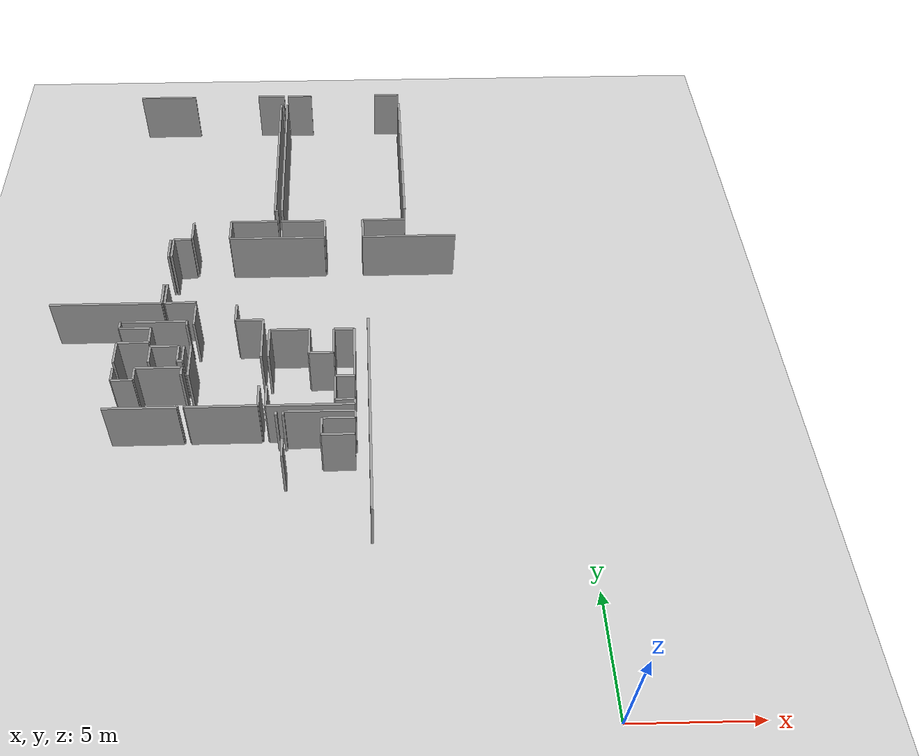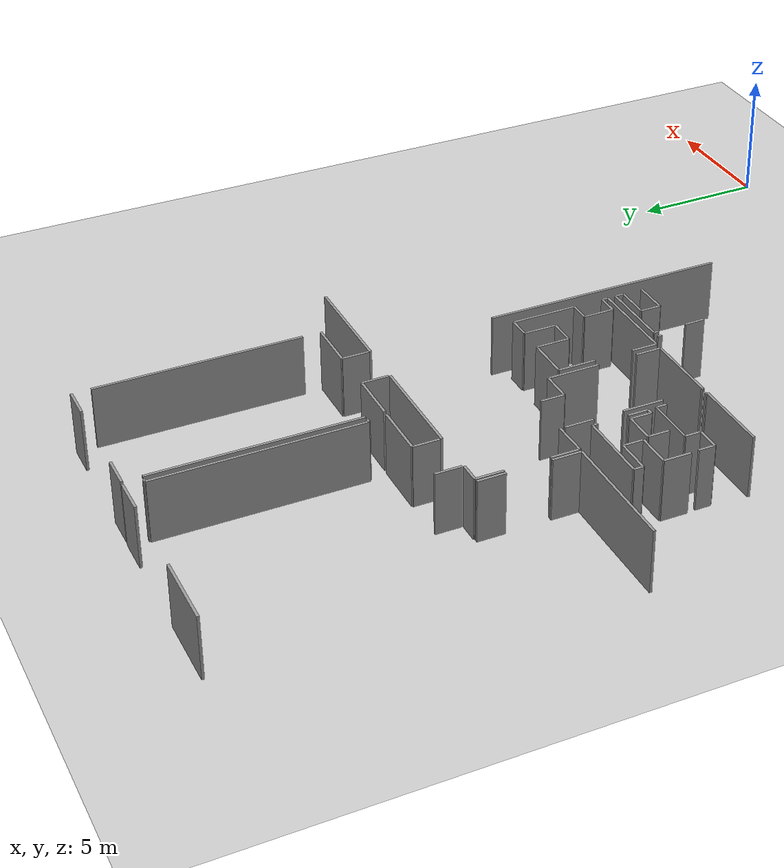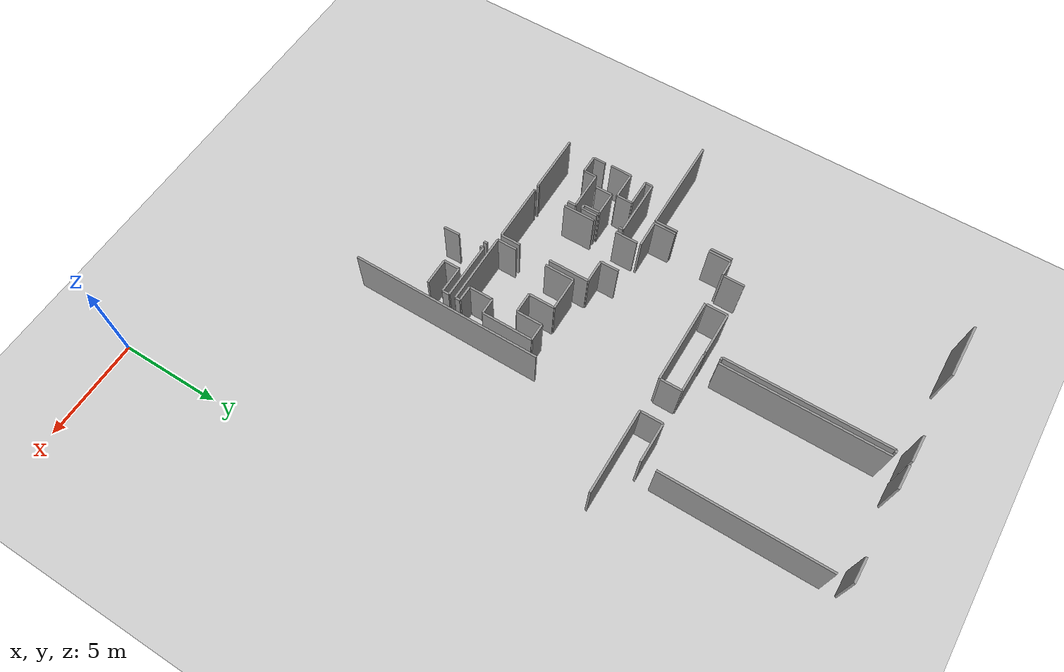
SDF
<sdf version="1.6">
 <world name="default">
  <model name="ground_plane">
   <static>1</static>
   <link name="link">
    <collision name="collision">
     <geometry><plane><normal>0 0 1</normal><size>100 100</size></plane></geometry>
     <surface><friction><ode><mu>100</mu><mu2>50</mu2></ode></friction></surface>
    </collision>
    <visual name="visual">
     <cast_shadows>0</cast_shadows>
     <geometry><plane><normal>0 0 1</normal><size>100 100</size></plane></geometry>
     <material>
      <script><uri>file://media/materials/scripts/gazebo.material</uri><name>Gazebo/Grey</name></script>
     </material>
    </visual>
   </link>
  </model>
  <model name="50052749">
   <static>1</static>
   <link name="Wall_51">
    <collision name="Wall_51_Collision">
     <geometry><box><size>1.0776397673 0.1 2.5</size></box></geometry>
     <pose>0.538819883652 0 1.25 0 0 0</pose>
    </collision>
    <visual name="Wall_51_Visual">
     <pose>0.538819883652 0 1.25 0 0 0</pose>
     <geometry><box><size>1.0776397673 0.1 2.5</size></box></geometry>
     <material>
      <script><uri>file://media/materials/scripts/gazebo.material</uri><name>Gazebo/Grey</name></script>
      <ambient>1 1 1 1</ambient>
     </material>
    </visual>
    <pose>25.0921807402 -10.5608443604 0 0 0 -1.57079632679</pose>
   </link>
   <link name="Wall_52">
    <collision name="Wall_52_Collision">
     <geometry><box><size>1.11720013998 0.1 2.5</size></box></geometry>
     <pose>0.558600069991 0 1.25 0 0 0</pose>
    </collision>
    <visual name="Wall_52_Visual">
     <pose>0.558600069991 0 1.25 0 0 0</pose>
     <geometry><box><size>1.11720013998 0.1 2.5</size></box></geometry>
     <material>
      <script><uri>file://media/materials/scripts/gazebo.material</uri><name>Gazebo/Grey</name></script>
      <ambient>1 1 1 1</ambient>
     </material>
    </visual>
    <pose>25.0921807402 -13.3620230566 0 0 0 -1.57079632679</pose>
   </link>
   <link name="Wall_53">
    <collision name="Wall_53_Collision">
     <geometry><box><size>4.80481013557 0.1 2.5</size></box></geometry>
     <pose>2.40240506779 0 1.25 0 0 0</pose>
    </collision>
    <visual name="Wall_53_Visual">
     <pose>2.40240506779 0 1.25 0 0 0</pose>
     <geometry><box><size>4.80481013557 0.1 2.5</size></box></geometry>
     <material>
      <script><uri>file://media/materials/scripts/gazebo.material</uri><name>Gazebo/Grey</name></script>
      <ambient>1 1 1 1</ambient>
     </material>
    </visual>
    <pose>25.0921807402 -14.4792231966 0 0 0 3.14159265359</pose>
   </link>
   <link name="Wall_67">
    <collision name="Wall_67_Collision">
     <geometry><box><size>1.01398814203 0.1 2.5</size></box></geometry>
     <pose>0.506994071016 0 1.25 0 0 0</pose>
    </collision>
    <visual name="Wall_67_Visual">
     <pose>0.506994071016 0 1.25 0 0 0</pose>
     <geometry><box><size>1.01398814203 0.1 2.5</size></box></geometry>
     <material>
      <script><uri>file://media/materials/scripts/gazebo.material</uri><name>Gazebo/Grey</name></script>
      <ambient>1 1 1 1</ambient>
     </material>
    </visual>
    <pose>26.0558308439 -9.47610401335 0 0 0 -1.57079632679</pose>
   </link>
   <link name="Wall_68">
    <collision name="Wall_68_Collision">
     <geometry><box><size>1.02933046605 0.1 2.5</size></box></geometry>
     <pose>0.514665233026 0 1.25 0 0 0</pose>
    </collision>
    <visual name="Wall_68_Visual">
     <pose>0.514665233026 0 1.25 0 0 0</pose>
     <geometry><box><size>1.02933046605 0.1 2.5</size></box></geometry>
     <material>
      <script><uri>file://media/materials/scripts/gazebo.material</uri><name>Gazebo/Grey</name></script>
      <ambient>1 1 1 1</ambient>
     </material>
    </visual>
    <pose>27.773917542 -10.4900921554 0 0 0 1.57079632679</pose>
   </link>
   <link name="Wall_69">
    <collision name="Wall_69_Collision">
     <geometry><box><size>2.12066420851 0.1 2.5</size></box></geometry>
     <pose>1.06033210426 0 1.25 0 0 0</pose>
    </collision>
    <visual name="Wall_69_Visual">
     <pose>1.06033210426 0 1.25 0 0 0</pose>
     <geometry><box><size>2.12066420851 0.1 2.5</size></box></geometry>
     <material>
      <script><uri>file://media/materials/scripts/gazebo.material</uri><name>Gazebo/Grey</name></script>
      <ambient>1 1 1 1</ambient>
     </material>
    </visual>
    <pose>27.773917542 -9.46076168933 0 0 0 0.0</pose>
   </link>
   <link name="Wall_70">
    <collision name="Wall_70_Collision">
     <geometry><box><size>0.14378673916 0.1 2.5</size></box></geometry>
     <pose>0.0718933695801 0 1.25 0 0 0</pose>
    </collision>
    <visual name="Wall_70_Visual">
     <pose>0.0718933695801 0 1.25 0 0 0</pose>
     <geometry><box><size>0.14378673916 0.1 2.5</size></box></geometry>
     <material>
      <script><uri>file://media/materials/scripts/gazebo.material</uri><name>Gazebo/Grey</name></script>
      <ambient>1 1 1 1</ambient>
     </material>
    </visual>
    <pose>29.8945817505 -8.7396724604 0 0 0 3.14159265359</pose>
   </link>
   <link name="Wall_71">
    <collision name="Wall_71_Collision">
     <geometry><box><size>7.99804226874 0.1 2.5</size></box></geometry>
     <pose>3.99902113437 0 1.25 0 0 0</pose>
    </collision>
    <visual name="Wall_71_Visual">
     <pose>3.99902113437 0 1.25 0 0 0</pose>
     <geometry><box><size>7.99804226874 0.1 2.5</size></box></geometry>
     <material>
      <script><uri>file://media/materials/scripts/gazebo.material</uri><name>Gazebo/Grey</name></script>
      <ambient>1 1 1 1</ambient>
     </material>
    </visual>
    <pose>29.7507950113 -8.7396724604 0 0 0 1.57079632679</pose>
   </link>
   <link name="Wall_72">
    <collision name="Wall_72_Collision">
     <geometry><box><size>0.138714896509 0.1 2.5</size></box></geometry>
     <pose>0.0693574482545 0 1.25 0 0 0</pose>
    </collision>
    <visual name="Wall_72_Visual">
     <pose>0.0693574482545 0 1.25 0 0 0</pose>
     <geometry><box><size>0.138714896509 0.1 2.5</size></box></geometry>
     <material>
      <script><uri>file://media/materials/scripts/gazebo.material</uri><name>Gazebo/Grey</name></script>
      <ambient>1 1 1 1</ambient>
     </material>
    </visual>
    <pose>29.7507950113 -0.741630191665 0 0 0 0.0</pose>
   </link>
   <link name="Wall_73">
    <collision name="Wall_73_Collision">
     <geometry><box><size>1.34277034189 0.1 2.5</size></box></geometry>
     <pose>0.671385170946 0 1.25 0 0 0</pose>
    </collision>
    <visual name="Wall_73_Visual">
     <pose>0.671385170946 0 1.25 0 0 0</pose>
     <geometry><box><size>1.34277034189 0.1 2.5</size></box></geometry>
     <material>
      <script><uri>file://media/materials/scripts/gazebo.material</uri><name>Gazebo/Grey</name></script>
      <ambient>1 1 1 1</ambient>
     </material>
    </visual>
    <pose>29.8895099078 -0.0167370807488 0 0 0 3.14159265359</pose>
   </link>
   <link name="Wall_74">
    <collision name="Wall_74_Collision">
     <geometry><box><size>2.76466142914 0.1 2.5</size></box></geometry>
     <pose>1.38233071457 0 1.25 0 0 0</pose>
    </collision>
    <visual name="Wall_74_Visual">
     <pose>1.38233071457 0 1.25 0 0 0</pose>
     <geometry><box><size>2.76466142914 0.1 2.5</size></box></geometry>
     <material>
      <script><uri>file://media/materials/scripts/gazebo.material</uri><name>Gazebo/Grey</name></script>
      <ambient>1 1 1 1</ambient>
     </material>
    </visual>
    <pose>25.3121719152 -0.0167370807488 0 0 0 3.14159265359</pose>
   </link>
   <link name="Wall_78">
    <collision name="Wall_78_Collision">
     <geometry><box><size>7.99132207722 0.1 2.5</size></box></geometry>
     <pose>3.99566103861 0 1.25 0 0 0</pose>
    </collision>
    <visual name="Wall_78_Visual">
     <pose>3.99566103861 0 1.25 0 0 0</pose>
     <geometry><box><size>7.99132207722 0.1 2.5</size></box></geometry>
     <material>
      <script><uri>file://media/materials/scripts/gazebo.material</uri><name>Gazebo/Grey</name></script>
      <ambient>1 1 1 1</ambient>
     </material>
    </visual>
    <pose>30.0660100321 -8.74778740864 0 0 0 1.57079632679</pose>
   </link>
   <link name="Wall_79">
    <collision name="Wall_79_Collision">
     <geometry><box><size>1.21128282116 0.1 2.5</size></box></geometry>
     <pose>0.605641410581 0 1.25 0 0 0</pose>
    </collision>
    <visual name="Wall_79_Visual">
     <pose>0.605641410581 0 1.25 0 0 0</pose>
     <geometry><box><size>1.21128282116 0.1 2.5</size></box></geometry>
     <material>
      <script><uri>file://media/materials/scripts/gazebo.material</uri><name>Gazebo/Grey</name></script>
      <ambient>1 1 1 1</ambient>
     </material>
    </visual>
    <pose>30.0660100321 -0.0394335766127 0 0 0 0.0</pose>
   </link>
   <link name="Wall_80">
    <collision name="Wall_80_Collision">
     <geometry><box><size>1.22548398058 0.1 2.5</size></box></geometry>
     <pose>0.612741990292 0 1.25 0 0 0</pose>
    </collision>
    <visual name="Wall_80_Visual">
     <pose>0.612741990292 0 1.25 0 0 0</pose>
     <geometry><box><size>1.22548398058 0.1 2.5</size></box></geometry>
     <material>
      <script><uri>file://media/materials/scripts/gazebo.material</uri><name>Gazebo/Grey</name></script>
      <ambient>1 1 1 1</ambient>
     </material>
    </visual>
    <pose>34.5454614616 -0.0394335766127 0 0 0 0.0</pose>
   </link>
   <link name="Wall_81">
    <collision name="Wall_81_Collision">
     <geometry><box><size>7.98143198405 0.1 2.5</size></box></geometry>
     <pose>3.99071599203 0 1.25 0 0 0</pose>
    </collision>
    <visual name="Wall_81_Visual">
     <pose>3.99071599203 0 1.25 0 0 0</pose>
     <geometry><box><size>7.98143198405 0.1 2.5</size></box></geometry>
     <material>
      <script><uri>file://media/materials/scripts/gazebo.material</uri><name>Gazebo/Grey</name></script>
      <ambient>1 1 1 1</ambient>
     </material>
    </visual>
    <pose>35.7709454422 -0.754309798293 0 0 0 -1.57079632679</pose>
   </link>
   <link name="Wall_82">
    <collision name="Wall_82_Collision">
     <geometry><box><size>1.962803106 0.1 2.5</size></box></geometry>
     <pose>0.981401552998 0 1.25 0 0 0</pose>
    </collision>
    <visual name="Wall_82_Visual">
     <pose>0.981401552998 0 1.25 0 0 0</pose>
     <geometry><box><size>1.962803106 0.1 2.5</size></box></geometry>
     <material>
      <script><uri>file://media/materials/scripts/gazebo.material</uri><name>Gazebo/Grey</name></script>
      <ambient>1 1 1 1</ambient>
     </material>
    </visual>
    <pose>35.7709454422 -9.45683101127 0 0 0 3.14159265359</pose>
   </link>
   <link name="Wall_83">
    <collision name="Wall_83_Collision">
     <geometry><box><size>1.04974463272 0.1 2.5</size></box></geometry>
     <pose>0.524872316361 0 1.25 0 0 0</pose>
    </collision>
    <visual name="Wall_83_Visual">
     <pose>0.524872316361 0 1.25 0 0 0</pose>
     <geometry><box><size>1.04974463272 0.1 2.5</size></box></geometry>
     <material>
      <script><uri>file://media/materials/scripts/gazebo.material</uri><name>Gazebo/Grey</name></script>
      <ambient>1 1 1 1</ambient>
     </material>
    </visual>
    <pose>33.8081423362 -9.45683101127 0 0 0 -1.57079632679</pose>
   </link>
   <link name="Wall_84">
    <collision name="Wall_84_Collision">
     <geometry><box><size>1.03135920311 0.1 2.5</size></box></geometry>
     <pose>0.515679601556 0 1.25 0 0 0</pose>
    </collision>
    <visual name="Wall_84_Visual">
     <pose>0.515679601556 0 1.25 0 0 0</pose>
     <geometry><box><size>1.03135920311 0.1 2.5</size></box></geometry>
     <material>
      <script><uri>file://media/materials/scripts/gazebo.material</uri><name>Gazebo/Grey</name></script>
      <ambient>1 1 1 1</ambient>
     </material>
    </visual>
    <pose>32.0584834176 -10.506575644 0 0 0 1.57079632679</pose>
   </link>
   <link name="Wall_85">
    <collision name="Wall_85_Collision">
     <geometry><box><size>1.9924749993 0.1 2.5</size></box></geometry>
     <pose>0.996237499651 0 1.25 0 0 0</pose>
    </collision>
    <visual name="Wall_85_Visual">
     <pose>0.996237499651 0 1.25 0 0 0</pose>
     <geometry><box><size>1.9924749993 0.1 2.5</size></box></geometry>
     <material>
      <script><uri>file://media/materials/scripts/gazebo.material</uri><name>Gazebo/Grey</name></script>
      <ambient>1 1 1 1</ambient>
     </material>
    </visual>
    <pose>32.0584834176 -9.47521644089 0 0 0 3.14031990386</pose>
   </link>
   <link name="Wall_120">
    <collision name="Wall_120_Collision">
     <geometry><box><size>1.10439373729 0.1 2.5</size></box></geometry>
     <pose>0.552196868644 0 1.25 0 0 0</pose>
    </collision>
    <visual name="Wall_120_Visual">
     <pose>0.552196868644 0 1.25 0 0 0</pose>
     <geometry><box><size>1.10439373729 0.1 2.5</size></box></geometry>
     <material>
      <script><uri>file://media/materials/scripts/gazebo.material</uri><name>Gazebo/Grey</name></script>
      <ambient>1 1 1 1</ambient>
     </material>
    </visual>
    <pose>25.2329243738 -14.4792231966 0 0 0 1.57079632679</pose>
   </link>
   <link name="Wall_121">
    <collision name="Wall_121_Collision">
     <geometry><box><size>1.0896853936 0.1 2.5</size></box></geometry>
     <pose>0.5448426968 0 1.25 0 0 0</pose>
    </collision>
    <visual name="Wall_121_Visual">
     <pose>0.5448426968 0 1.25 0 0 0</pose>
     <geometry><box><size>1.0896853936 0.1 2.5</size></box></geometry>
     <material>
      <script><uri>file://media/materials/scripts/gazebo.material</uri><name>Gazebo/Grey</name></script>
      <ambient>1 1 1 1</ambient>
     </material>
    </visual>
    <pose>25.2329243738 -11.6529388792 0 0 0 1.57079632679</pose>
   </link>
   <link name="Wall_122">
    <collision name="Wall_122_Collision">
     <geometry><box><size>0.79222182211 0.1 2.5</size></box></geometry>
     <pose>0.396110911055 0 1.25 0 0 0</pose>
    </collision>
    <visual name="Wall_122_Visual">
     <pose>0.396110911055 0 1.25 0 0 0</pose>
     <geometry><box><size>0.79222182211 0.1 2.5</size></box></geometry>
     <material>
      <script><uri>file://media/materials/scripts/gazebo.material</uri><name>Gazebo/Grey</name></script>
      <ambient>1 1 1 1</ambient>
     </material>
    </visual>
    <pose>25.2329243738 -10.5632534856 0 0 0 0.0</pose>
   </link>
   <link name="Wall_123">
    <collision name="Wall_123_Collision">
     <geometry><box><size>4.28139597397 0.1 2.5</size></box></geometry>
     <pose>2.14069798699 0 1.25 0 0 0</pose>
    </collision>
    <visual name="Wall_123_Visual">
     <pose>2.14069798699 0 1.25 0 0 0</pose>
     <geometry><box><size>4.28139597397 0.1 2.5</size></box></geometry>
     <material>
      <script><uri>file://media/materials/scripts/gazebo.material</uri><name>Gazebo/Grey</name></script>
      <ambient>1 1 1 1</ambient>
     </material>
    </visual>
    <pose>27.7661829819 -10.5632534856 0 0 0 0.0</pose>
   </link>
   <link name="Wall_124">
    <collision name="Wall_124_Collision">
     <geometry><box><size>4.22649327727 0.1 2.5</size></box></geometry>
     <pose>2.11324663864 0 1.25 0 0 0</pose>
    </collision>
    <visual name="Wall_124_Visual">
     <pose>2.11324663864 0 1.25 0 0 0</pose>
     <geometry><box><size>4.22649327727 0.1 2.5</size></box></geometry>
     <material>
      <script><uri>file://media/materials/scripts/gazebo.material</uri><name>Gazebo/Grey</name></script>
      <ambient>1 1 1 1</ambient>
     </material>
    </visual>
    <pose>33.7911516633 -10.5632534856 0 0 0 0.0</pose>
   </link>
   <link name="Wall_138">
    <collision name="Wall_138_Collision">
     <geometry><box><size>1.35602671233 0.1 2.5</size></box></geometry>
     <pose>0.678013356164 0 1.25 0 0 0</pose>
    </collision>
    <visual name="Wall_138_Visual">
     <pose>0.678013356164 0 1.25 0 0 0</pose>
     <geometry><box><size>1.35602671233 0.1 2.5</size></box></geometry>
     <material>
      <script><uri>file://media/materials/scripts/gazebo.material</uri><name>Gazebo/Grey</name></script>
      <ambient>1 1 1 1</ambient>
     </material>
    </visual>
    <pose>26.5887547105 -14.4561463125 0 0 0 -3.12457381621</pose>
   </link>
   <link name="Wall_192">
    <collision name="Wall_192_Collision">
     <geometry><box><size>9.47877100584 0.1 2.5</size></box></geometry>
     <pose>4.73938550292 0 1.25 0 0 0</pose>
    </collision>
    <visual name="Wall_192_Visual">
     <pose>4.73938550292 0 1.25 0 0 0</pose>
     <geometry><box><size>9.47877100584 0.1 2.5</size></box></geometry>
     <material>
      <script><uri>file://media/materials/scripts/gazebo.material</uri><name>Gazebo/Grey</name></script>
      <ambient>1 1 1 1</ambient>
     </material>
    </visual>
    <pose>33.9682857679 -15.5430421927 0 0 0 -1.57174608305</pose>
   </link>
   <link name="Wall_193">
    <collision name="Wall_193_Collision">
     <geometry><box><size>0.0666947308627 0.1 2.5</size></box></geometry>
     <pose>0.0333473654313 0 1.25 0 0 0</pose>
    </collision>
    <visual name="Wall_193_Visual">
     <pose>0.0333473654313 0 1.25 0 0 0</pose>
     <geometry><box><size>0.0666947308627 0.1 2.5</size></box></geometry>
     <material>
      <script><uri>file://media/materials/scripts/gazebo.material</uri><name>Gazebo/Grey</name></script>
      <ambient>1 1 1 1</ambient>
     </material>
    </visual>
    <pose>26.5835560718 -20.1234232909 0 0 0 1.57079632679</pose>
   </link>
   <link name="Wall_194">
    <collision name="Wall_194_Collision">
     <geometry><box><size>1.56973530053 0.1 2.5</size></box></geometry>
     <pose>0.784867650266 0 1.25 0 0 0</pose>
    </collision>
    <visual name="Wall_194_Visual">
     <pose>0.784867650266 0 1.25 0 0 0</pose>
     <geometry><box><size>1.56973530053 0.1 2.5</size></box></geometry>
     <material>
      <script><uri>file://media/materials/scripts/gazebo.material</uri><name>Gazebo/Grey</name></script>
      <ambient>1 1 1 1</ambient>
     </material>
    </visual>
    <pose>26.5835560718 -18.4811606405 0 0 0 1.57079632679</pose>
   </link>
   <link name="Wall_195">
    <collision name="Wall_195_Collision">
     <geometry><box><size>1.10883159961 0.1 2.5</size></box></geometry>
     <pose>0.554415799804 0 1.25 0 0 0</pose>
    </collision>
    <visual name="Wall_195_Visual">
     <pose>0.554415799804 0 1.25 0 0 0</pose>
     <geometry><box><size>1.10883159961 0.1 2.5</size></box></geometry>
     <material>
      <script><uri>file://media/materials/scripts/gazebo.material</uri><name>Gazebo/Grey</name></script>
      <ambient>1 1 1 1</ambient>
     </material>
    </visual>
    <pose>26.5835560718 -15.744521142 0 0 0 1.57079632679</pose>
   </link>
   <link name="Wall_196">
    <collision name="Wall_196_Collision">
     <geometry><box><size>0.909888571617 0.1 2.5</size></box></geometry>
     <pose>0.454944285808 0 1.25 0 0 0</pose>
    </collision>
    <visual name="Wall_196_Visual">
     <pose>0.454944285808 0 1.25 0 0 0</pose>
     <geometry><box><size>0.909888571617 0.1 2.5</size></box></geometry>
     <material>
      <script><uri>file://media/materials/scripts/gazebo.material</uri><name>Gazebo/Grey</name></script>
      <ambient>1 1 1 1</ambient>
     </material>
    </visual>
    <pose>28.3387940173 -14.6356895424 0 0 0 -1.57079632679</pose>
   </link>
   <link name="Wall_197">
    <collision name="Wall_197_Collision">
     <geometry><box><size>1.16994730355 0.1 2.5</size></box></geometry>
     <pose>0.584973651777 0 1.25 0 0 0</pose>
    </collision>
    <visual name="Wall_197_Visual">
     <pose>0.584973651777 0 1.25 0 0 0</pose>
     <geometry><box><size>1.16994730355 0.1 2.5</size></box></geometry>
     <material>
      <script><uri>file://media/materials/scripts/gazebo.material</uri><name>Gazebo/Grey</name></script>
      <ambient>1 1 1 1</ambient>
     </material>
    </visual>
    <pose>28.3387940173 -15.545578114 0 0 0 0.0</pose>
   </link>
   <link name="Wall_198">
    <collision name="Wall_198_Collision">
     <geometry><box><size>2.01326794038 0.1 2.5</size></box></geometry>
     <pose>1.00663397019 0 1.25 0 0 0</pose>
    </collision>
    <visual name="Wall_198_Visual">
     <pose>1.00663397019 0 1.25 0 0 0</pose>
     <geometry><box><size>2.01326794038 0.1 2.5</size></box></geometry>
     <material>
      <script><uri>file://media/materials/scripts/gazebo.material</uri><name>Gazebo/Grey</name></script>
      <ambient>1 1 1 1</ambient>
     </material>
    </visual>
    <pose>29.5087413208 -15.545578114 0 0 0 -1.57079632679</pose>
   </link>
   <link name="Wall_199">
    <collision name="Wall_199_Collision">
     <geometry><box><size>0.996236692753 0.1 2.5</size></box></geometry>
     <pose>0.498118346376 0 1.25 0 0 0</pose>
    </collision>
    <visual name="Wall_199_Visual">
     <pose>0.498118346376 0 1.25 0 0 0</pose>
     <geometry><box><size>0.996236692753 0.1 2.5</size></box></geometry>
     <material>
      <script><uri>file://media/materials/scripts/gazebo.material</uri><name>Gazebo/Grey</name></script>
      <ambient>1 1 1 1</ambient>
     </material>
    </visual>
    <pose>29.5087413208 -19.119198446 0 0 0 -1.57079632679</pose>
   </link>
   <link name="Wall_200">
    <collision name="Wall_200_Collision">
     <geometry><box><size>2.92519615613 0.1 2.5</size></box></geometry>
     <pose>1.46259807807 0 1.25 0 0 0</pose>
    </collision>
    <visual name="Wall_200_Visual">
     <pose>1.46259807807 0 1.25 0 0 0</pose>
     <geometry><box><size>2.92519615613 0.1 2.5</size></box></geometry>
     <material>
      <script><uri>file://media/materials/scripts/gazebo.material</uri><name>Gazebo/Grey</name></script>
      <ambient>1 1 1 1</ambient>
     </material>
    </visual>
    <pose>29.5087413208 -20.1154351387 0 0 0 -3.13886184113</pose>
   </link>
   <link name="Wall_201">
    <collision name="Wall_201_Collision">
     <geometry><box><size>0.992052422566 0.1 2.5</size></box></geometry>
     <pose>0.496026211283 0 1.25 0 0 0</pose>
    </collision>
    <visual name="Wall_201_Visual">
     <pose>0.496026211283 0 1.25 0 0 0</pose>
     <geometry><box><size>0.992052422566 0.1 2.5</size></box></geometry>
     <material>
      <script><uri>file://media/materials/scripts/gazebo.material</uri><name>Gazebo/Grey</name></script>
      <ambient>1 1 1 1</ambient>
     </material>
    </visual>
    <pose>29.8100087743 -20.1234232909 0 0 0 1.57079632679</pose>
   </link>
   <link name="Wall_202">
    <collision name="Wall_202_Collision">
     <geometry><box><size>1.45625282121 0.1 2.5</size></box></geometry>
     <pose>0.728126410606 0 1.25 0 0 0</pose>
    </collision>
    <visual name="Wall_202_Visual">
     <pose>0.728126410606 0 1.25 0 0 0</pose>
     <geometry><box><size>1.45625282121 0.1 2.5</size></box></geometry>
     <material>
      <script><uri>file://media/materials/scripts/gazebo.material</uri><name>Gazebo/Grey</name></script>
      <ambient>1 1 1 1</ambient>
     </material>
    </visual>
    <pose>29.8100087743 -17.5796406092 0 0 0 1.57079632679</pose>
   </link>
   <link name="Wall_203">
    <collision name="Wall_203_Collision">
     <geometry><box><size>1.68080865459 0.1 2.5</size></box></geometry>
     <pose>0.840404327296 0 1.25 0 0 0</pose>
    </collision>
    <visual name="Wall_203_Visual">
     <pose>0.840404327296 0 1.25 0 0 0</pose>
     <geometry><box><size>1.68080865459 0.1 2.5</size></box></geometry>
     <material>
      <script><uri>file://media/materials/scripts/gazebo.material</uri><name>Gazebo/Grey</name></script>
      <ambient>1 1 1 1</ambient>
     </material>
    </visual>
    <pose>29.8100087743 -16.123387788 0 0 0 0.0</pose>
   </link>
   <link name="Wall_204">
    <collision name="Wall_204_Collision">
     <geometry><box><size>1.29864531083 0.1 2.5</size></box></geometry>
     <pose>0.649322655414 0 1.25 0 0 0</pose>
    </collision>
    <visual name="Wall_204_Visual">
     <pose>0.649322655414 0 1.25 0 0 0</pose>
     <geometry><box><size>1.29864531083 0.1 2.5</size></box></geometry>
     <material>
      <script><uri>file://media/materials/scripts/gazebo.material</uri><name>Gazebo/Grey</name></script>
      <ambient>1 1 1 1</ambient>
     </material>
    </visual>
    <pose>31.4908174289 -16.123387788 0 0 0 -1.57079632679</pose>
   </link>
   <link name="Wall_205">
    <collision name="Wall_205_Collision">
     <geometry><box><size>1.02121551781 0.1 2.5</size></box></geometry>
     <pose>0.510607758905 0 1.25 0 0 0</pose>
    </collision>
    <visual name="Wall_205_Visual">
     <pose>0.510607758905 0 1.25 0 0 0</pose>
     <geometry><box><size>1.02121551781 0.1 2.5</size></box></geometry>
     <material>
      <script><uri>file://media/materials/scripts/gazebo.material</uri><name>Gazebo/Grey</name></script>
      <ambient>1 1 1 1</ambient>
     </material>
    </visual>
    <pose>31.4908174289 -17.4220330988 0 0 0 0.0</pose>
   </link>
   <link name="Wall_206">
    <collision name="Wall_206_Collision">
     <geometry><box><size>1.27975269695 0.1 2.5</size></box></geometry>
     <pose>0.639876348476 0 1.25 0 0 0</pose>
    </collision>
    <visual name="Wall_206_Visual">
     <pose>0.639876348476 0 1.25 0 0 0</pose>
     <geometry><box><size>1.27975269695 0.1 2.5</size></box></geometry>
     <material>
      <script><uri>file://media/materials/scripts/gazebo.material</uri><name>Gazebo/Grey</name></script>
      <ambient>1 1 1 1</ambient>
     </material>
    </visual>
    <pose>32.5120329467 -17.4220330988 0 0 0 1.57079632679</pose>
   </link>
   <link name="Wall_207">
    <collision name="Wall_207_Collision">
     <geometry><box><size>0.857268204111 0.1 2.5</size></box></geometry>
     <pose>0.428634102056 0 1.25 0 0 0</pose>
    </collision>
    <visual name="Wall_207_Visual">
     <pose>0.428634102056 0 1.25 0 0 0</pose>
     <geometry><box><size>0.857268204111 0.1 2.5</size></box></geometry>
     <material>
      <script><uri>file://media/materials/scripts/gazebo.material</uri><name>Gazebo/Grey</name></script>
      <ambient>1 1 1 1</ambient>
     </material>
    </visual>
    <pose>32.5120329467 -16.1422804019 0 0 0 0.0</pose>
   </link>
   <link name="Wall_208">
    <collision name="Wall_208_Collision">
     <geometry><box><size>2.52882074587 0.1 2.5</size></box></geometry>
     <pose>1.26441037293 0 1.25 0 0 0</pose>
    </collision>
    <visual name="Wall_208_Visual">
     <pose>1.26441037293 0 1.25 0 0 0</pose>
     <geometry><box><size>2.52882074587 0.1 2.5</size></box></geometry>
     <material>
      <script><uri>file://media/materials/scripts/gazebo.material</uri><name>Gazebo/Grey</name></script>
      <ambient>1 1 1 1</ambient>
     </material>
    </visual>
    <pose>33.3693011508 -16.1422804019 0 0 0 -1.57079632679</pose>
   </link>
   <link name="Wall_209">
    <collision name="Wall_209_Collision">
     <geometry><box><size>0.78778395979 0.1 2.5</size></box></geometry>
     <pose>0.393891979895 0 1.25 0 0 0</pose>
    </collision>
    <visual name="Wall_209_Visual">
     <pose>0.393891979895 0 1.25 0 0 0</pose>
     <geometry><box><size>0.78778395979 0.1 2.5</size></box></geometry>
     <material>
      <script><uri>file://media/materials/scripts/gazebo.material</uri><name>Gazebo/Grey</name></script>
      <ambient>1 1 1 1</ambient>
     </material>
    </visual>
    <pose>33.3693011508 -18.6711011478 0 0 0 3.14159265359</pose>
   </link>
   <link name="Wall_210">
    <collision name="Wall_210_Collision">
     <geometry><box><size>1.19644768141 0.1 2.5</size></box></geometry>
     <pose>0.598223840704 0 1.25 0 0 0</pose>
    </collision>
    <visual name="Wall_210_Visual">
     <pose>0.598223840704 0 1.25 0 0 0</pose>
     <geometry><box><size>1.19644768141 0.1 2.5</size></box></geometry>
     <material>
      <script><uri>file://media/materials/scripts/gazebo.material</uri><name>Gazebo/Grey</name></script>
      <ambient>1 1 1 1</ambient>
     </material>
    </visual>
    <pose>32.581517191 -18.6711011478 0 0 0 -1.57079632679</pose>
   </link>
   <link name="Wall_211">
    <collision name="Wall_211_Collision">
     <geometry><box><size>0.786515999128 0.1 2.5</size></box></geometry>
     <pose>0.393257999564 0 1.25 0 0 0</pose>
    </collision>
    <visual name="Wall_211_Visual">
     <pose>0.393257999564 0 1.25 0 0 0</pose>
     <geometry><box><size>0.786515999128 0.1 2.5</size></box></geometry>
     <material>
      <script><uri>file://media/materials/scripts/gazebo.material</uri><name>Gazebo/Grey</name></script>
      <ambient>1 1 1 1</ambient>
     </material>
    </visual>
    <pose>32.581517191 -19.8675488292 0 0 0 0.0</pose>
   </link>
   <link name="Wall_212">
    <collision name="Wall_212_Collision">
     <geometry><box><size>0.243068059057 0.1 2.5</size></box></geometry>
     <pose>0.121534029528 0 1.25 0 0 0</pose>
    </collision>
    <visual name="Wall_212_Visual">
     <pose>0.121534029528 0 1.25 0 0 0</pose>
     <geometry><box><size>0.243068059057 0.1 2.5</size></box></geometry>
     <material>
      <script><uri>file://media/materials/scripts/gazebo.material</uri><name>Gazebo/Grey</name></script>
      <ambient>1 1 1 1</ambient>
     </material>
    </visual>
    <pose>33.3680331901 -19.8675488292 0 0 0 -1.57079632679</pose>
   </link>
   <link name="Wall_213">
    <collision name="Wall_213_Collision">
     <geometry><box><size>3.55804746283 0.1 2.5</size></box></geometry>
     <pose>1.77902373141 0 1.25 0 0 0</pose>
    </collision>
    <visual name="Wall_213_Visual">
     <pose>1.77902373141 0 1.25 0 0 0</pose>
     <geometry><box><size>3.55804746283 0.1 2.5</size></box></geometry>
     <material>
      <script><uri>file://media/materials/scripts/gazebo.material</uri><name>Gazebo/Grey</name></script>
      <ambient>1 1 1 1</ambient>
     </material>
    </visual>
    <pose>33.3680331901 -20.1106168882 0 0 0 -3.13799336761</pose>
   </link>
   <link name="Wall_216">
    <collision name="Wall_216_Collision">
     <geometry><box><size>0.634360719593 0.1 2.5</size></box></geometry>
     <pose>0.317180359797 0 1.25 0 0 0</pose>
    </collision>
    <visual name="Wall_216_Visual">
     <pose>0.317180359797 0 1.25 0 0 0</pose>
     <geometry><box><size>0.634360719593 0.1 2.5</size></box></geometry>
     <material>
      <script><uri>file://media/materials/scripts/gazebo.material</uri><name>Gazebo/Grey</name></script>
      <ambient>1 1 1 1</ambient>
     </material>
    </visual>
    <pose>23.4825046788 -18.0529703246 0 0 0 -1.57079632679</pose>
   </link>
   <link name="Wall_217">
    <collision name="Wall_217_Collision">
     <geometry><box><size>0.890235181344 0.1 2.5</size></box></geometry>
     <pose>0.445117590672 0 1.25 0 0 0</pose>
    </collision>
    <visual name="Wall_217_Visual">
     <pose>0.445117590672 0 1.25 0 0 0</pose>
     <geometry><box><size>0.890235181344 0.1 2.5</size></box></geometry>
     <material>
      <script><uri>file://media/materials/scripts/gazebo.material</uri><name>Gazebo/Grey</name></script>
      <ambient>1 1 1 1</ambient>
     </material>
    </visual>
    <pose>23.4825046788 -18.6873310442 0 0 0 0.0</pose>
   </link>
   <link name="Wall_218">
    <collision name="Wall_218_Collision">
     <geometry><box><size>0.623583053959 0.1 2.5</size></box></geometry>
     <pose>0.31179152698 0 1.25 0 0 0</pose>
    </collision>
    <visual name="Wall_218_Visual">
     <pose>0.31179152698 0 1.25 0 0 0</pose>
     <geometry><box><size>0.623583053959 0.1 2.5</size></box></geometry>
     <material>
      <script><uri>file://media/materials/scripts/gazebo.material</uri><name>Gazebo/Grey</name></script>
      <ambient>1 1 1 1</ambient>
     </material>
    </visual>
    <pose>24.3727398601 -18.6873310442 0 0 0 1.57079632679</pose>
   </link>
   <link name="Wall_219">
    <collision name="Wall_219_Collision">
     <geometry><box><size>1.92134079232 0.1 2.5</size></box></geometry>
     <pose>0.960670396162 0 1.25 0 0 0</pose>
    </collision>
    <visual name="Wall_219_Visual">
     <pose>0.960670396162 0 1.25 0 0 0</pose>
     <geometry><box><size>1.92134079232 0.1 2.5</size></box></geometry>
     <material>
      <script><uri>file://media/materials/scripts/gazebo.material</uri><name>Gazebo/Grey</name></script>
      <ambient>1 1 1 1</ambient>
     </material>
    </visual>
    <pose>24.3727398601 -18.0637479903 0 0 0 0.0</pose>
   </link>
   <link name="Wall_220">
    <collision name="Wall_220_Collision">
     <geometry><box><size>0.402450714369 0.1 2.5</size></box></geometry>
     <pose>0.201225357185 0 1.25 0 0 0</pose>
    </collision>
    <visual name="Wall_220_Visual">
     <pose>0.201225357185 0 1.25 0 0 0</pose>
     <geometry><box><size>0.402450714369 0.1 2.5</size></box></geometry>
     <material>
      <script><uri>file://media/materials/scripts/gazebo.material</uri><name>Gazebo/Grey</name></script>
      <ambient>1 1 1 1</ambient>
     </material>
    </visual>
    <pose>26.2940806524 -18.0637479903 0 0 0 -1.57079632679</pose>
   </link>
   <link name="Wall_221">
    <collision name="Wall_221_Collision">
     <geometry><box><size>0.0953506418417 0.1 2.5</size></box></geometry>
     <pose>0.0476753209208 0 1.25 0 0 0</pose>
    </collision>
    <visual name="Wall_221_Visual">
     <pose>0.0476753209208 0 1.25 0 0 0</pose>
     <geometry><box><size>0.0953506418417 0.1 2.5</size></box></geometry>
     <material>
      <script><uri>file://media/materials/scripts/gazebo.material</uri><name>Gazebo/Grey</name></script>
      <ambient>1 1 1 1</ambient>
     </material>
    </visual>
    <pose>26.2940806524 -20.0295942019 0 0 0 -1.57079632679</pose>
   </link>
   <link name="Wall_222">
    <collision name="Wall_222_Collision">
     <geometry><box><size>2.98592095247 0.1 2.5</size></box></geometry>
     <pose>1.49296047624 0 1.25 0 0 0</pose>
    </collision>
    <visual name="Wall_222_Visual">
     <pose>1.49296047624 0 1.25 0 0 0</pose>
     <geometry><box><size>2.98592095247 0.1 2.5</size></box></geometry>
     <material>
      <script><uri>file://media/materials/scripts/gazebo.material</uri><name>Gazebo/Grey</name></script>
      <ambient>1 1 1 1</ambient>
     </material>
    </visual>
    <pose>26.2940806524 -20.1249448437 0 0 0 -3.14108307786</pose>
   </link>
   <link name="Wall_224">
    <collision name="Wall_224_Collision">
     <geometry><box><size>0.825822779674 0.1 2.5</size></box></geometry>
     <pose>0.412911389837 0 1.25 0 0 0</pose>
    </collision>
    <visual name="Wall_224_Visual">
     <pose>0.412911389837 0 1.25 0 0 0</pose>
     <geometry><box><size>0.825822779674 0.1 2.5</size></box></geometry>
     <material>
      <script><uri>file://media/materials/scripts/gazebo.material</uri><name>Gazebo/Grey</name></script>
      <ambient>1 1 1 1</ambient>
     </material>
    </visual>
    <pose>24.8904481987 -17.7435879229 0 0 0 1.57079632679</pose>
   </link>
   <link name="Wall_225">
    <collision name="Wall_225_Collision">
     <geometry><box><size>1.17882302819 0.1 2.5</size></box></geometry>
     <pose>0.589411514097 0 1.25 0 0 0</pose>
    </collision>
    <visual name="Wall_225_Visual">
     <pose>0.589411514097 0 1.25 0 0 0</pose>
     <geometry><box><size>1.17882302819 0.1 2.5</size></box></geometry>
     <material>
      <script><uri>file://media/materials/scripts/gazebo.material</uri><name>Gazebo/Grey</name></script>
      <ambient>1 1 1 1</ambient>
     </material>
    </visual>
    <pose>24.8904481987 -16.9177651433 0 0 0 0.0</pose>
   </link>
   <link name="Wall_226">
    <collision name="Wall_226_Collision">
     <geometry><box><size>0.813143173046 0.1 2.5</size></box></geometry>
     <pose>0.406571586523 0 1.25 0 0 0</pose>
    </collision>
    <visual name="Wall_226_Visual">
     <pose>0.406571586523 0 1.25 0 0 0</pose>
     <geometry><box><size>0.813143173046 0.1 2.5</size></box></geometry>
     <material>
      <script><uri>file://media/materials/scripts/gazebo.material</uri><name>Gazebo/Grey</name></script>
      <ambient>1 1 1 1</ambient>
     </material>
    </visual>
    <pose>26.0692712269 -16.9177651433 0 0 0 -1.57079632679</pose>
   </link>
   <link name="Wall_227">
    <collision name="Wall_227_Collision">
     <geometry><box><size>0.214412148078 0.1 2.5</size></box></geometry>
     <pose>0.107206074039 0 1.25 0 0 0</pose>
    </collision>
    <visual name="Wall_227_Visual">
     <pose>0.107206074039 0 1.25 0 0 0</pose>
     <geometry><box><size>0.214412148078 0.1 2.5</size></box></geometry>
     <material>
      <script><uri>file://media/materials/scripts/gazebo.material</uri><name>Gazebo/Grey</name></script>
      <ambient>1 1 1 1</ambient>
     </material>
    </visual>
    <pose>26.0692712269 -17.7309083163 0 0 0 0.0</pose>
   </link>
   <link name="Wall_228">
    <collision name="Wall_228_Collision">
     <geometry><box><size>0.800590362485 0.1 2.5</size></box></geometry>
     <pose>0.400295181242 0 1.25 0 0 0</pose>
    </collision>
    <visual name="Wall_228_Visual">
     <pose>0.400295181242 0 1.25 0 0 0</pose>
     <geometry><box><size>0.800590362485 0.1 2.5</size></box></geometry>
     <material>
      <script><uri>file://media/materials/scripts/gazebo.material</uri><name>Gazebo/Grey</name></script>
      <ambient>1 1 1 1</ambient>
     </material>
    </visual>
    <pose>26.283683375 -17.7309083163 0 0 0 1.57079632679</pose>
   </link>
   <link name="Wall_229">
    <collision name="Wall_229_Collision">
     <geometry><box><size>0.214412148078 0.1 2.5</size></box></geometry>
     <pose>0.107206074039 0 1.25 0 0 0</pose>
    </collision>
    <visual name="Wall_229_Visual">
     <pose>0.107206074039 0 1.25 0 0 0</pose>
     <geometry><box><size>0.214412148078 0.1 2.5</size></box></geometry>
     <material>
      <script><uri>file://media/materials/scripts/gazebo.material</uri><name>Gazebo/Grey</name></script>
      <ambient>1 1 1 1</ambient>
     </material>
    </visual>
    <pose>26.283683375 -15.7578347289 0 0 0 1.57079632679</pose>
   </link>
   <link name="Wall_230">
    <collision name="Wall_230_Collision">
     <geometry><box><size>2.82425558029 0.1 2.5</size></box></geometry>
     <pose>1.41212779015 0 1.25 0 0 0</pose>
    </collision>
    <visual name="Wall_230_Visual">
     <pose>1.41212779015 0 1.25 0 0 0</pose>
     <geometry><box><size>2.82425558029 0.1 2.5</size></box></geometry>
     <material>
      <script><uri>file://media/materials/scripts/gazebo.material</uri><name>Gazebo/Grey</name></script>
      <ambient>1 1 1 1</ambient>
     </material>
    </visual>
    <pose>26.283683375 -15.5434225809 0 0 0 3.14159265359</pose>
   </link>
   <link name="Wall_231">
    <collision name="Wall_231_Collision">
     <geometry><box><size>0.354521801316 0.1 2.5</size></box></geometry>
     <pose>0.177260900658 0 1.25 0 0 0</pose>
    </collision>
    <visual name="Wall_231_Visual">
     <pose>0.177260900658 0 1.25 0 0 0</pose>
     <geometry><box><size>0.354521801316 0.1 2.5</size></box></geometry>
     <material>
      <script><uri>file://media/materials/scripts/gazebo.material</uri><name>Gazebo/Grey</name></script>
      <ambient>1 1 1 1</ambient>
     </material>
    </visual>
    <pose>23.4594277947 -15.5434225809 0 0 0 -1.57079632679</pose>
   </link>
   <link name="Wall_232">
    <collision name="Wall_232_Collision">
     <geometry><box><size>1.33237306446 0.1 2.5</size></box></geometry>
     <pose>0.666186532229 0 1.25 0 0 0</pose>
    </collision>
    <visual name="Wall_232_Visual">
     <pose>0.666186532229 0 1.25 0 0 0</pose>
     <geometry><box><size>1.33237306446 0.1 2.5</size></box></geometry>
     <material>
      <script><uri>file://media/materials/scripts/gazebo.material</uri><name>Gazebo/Grey</name></script>
      <ambient>1 1 1 1</ambient>
     </material>
    </visual>
    <pose>23.4594277947 -15.8979443822 0 0 0 0.0</pose>
   </link>
   <link name="Wall_233">
    <collision name="Wall_233_Collision">
     <geometry><box><size>0.787530367658 0.1 2.5</size></box></geometry>
     <pose>0.393765183829 0 1.25 0 0 0</pose>
    </collision>
    <visual name="Wall_233_Visual">
     <pose>0.393765183829 0 1.25 0 0 0</pose>
     <geometry><box><size>0.787530367658 0.1 2.5</size></box></geometry>
     <material>
      <script><uri>file://media/materials/scripts/gazebo.material</uri><name>Gazebo/Grey</name></script>
      <ambient>1 1 1 1</ambient>
     </material>
    </visual>
    <pose>24.7918008592 -15.8979443822 0 0 0 -1.57079632679</pose>
   </link>
   <link name="Wall_234">
    <collision name="Wall_234_Collision">
     <geometry><box><size>1.33059791953 0.1 2.5</size></box></geometry>
     <pose>0.665298959765 0 1.25 0 0 0</pose>
    </collision>
    <visual name="Wall_234_Visual">
     <pose>0.665298959765 0 1.25 0 0 0</pose>
     <geometry><box><size>1.33059791953 0.1 2.5</size></box></geometry>
     <material>
      <script><uri>file://media/materials/scripts/gazebo.material</uri><name>Gazebo/Grey</name></script>
      <ambient>1 1 1 1</ambient>
     </material>
    </visual>
    <pose>24.7918008592 -16.6854747498 0 0 0 3.14159265359</pose>
   </link>
   <link name="Wall_235">
    <collision name="Wall_235_Collision">
     <geometry><box><size>1.05814332567 0.1 2.5</size></box></geometry>
     <pose>0.529071662834 0 1.25 0 0 0</pose>
    </collision>
    <visual name="Wall_235_Visual">
     <pose>0.529071662834 0 1.25 0 0 0</pose>
     <geometry><box><size>1.05814332567 0.1 2.5</size></box></geometry>
     <material>
      <script><uri>file://media/materials/scripts/gazebo.material</uri><name>Gazebo/Grey</name></script>
      <ambient>1 1 1 1</ambient>
     </material>
    </visual>
    <pose>23.4612029396 -16.6854747498 0 0 0 -1.57834561417</pose>
   </link>
   <link name="Wall_251">
    <collision name="Wall_251_Collision">
     <geometry><box><size>0.180557598381 0.1 2.5</size></box></geometry>
     <pose>0.0902787991905 0 1.25 0 0 0</pose>
    </collision>
    <visual name="Wall_251_Visual">
     <pose>0.0902787991905 0 1.25 0 0 0</pose>
     <geometry><box><size>0.180557598381 0.1 2.5</size></box></geometry>
     <material>
      <script><uri>file://media/materials/scripts/gazebo.material</uri><name>Gazebo/Grey</name></script>
      <ambient>1 1 1 1</ambient>
     </material>
    </visual>
    <pose>30.2388330704 -20.4227888034 0 0 0 -1.57079632679</pose>
   </link>
   <link name="Wall_262">
    <collision name="Wall_262_Collision">
     <geometry><box><size>1.32666724148 0.1 2.5</size></box></geometry>
     <pose>0.663333620738 0 1.25 0 0 0</pose>
    </collision>
    <visual name="Wall_262_Visual">
     <pose>0.663333620738 0 1.25 0 0 0</pose>
     <geometry><box><size>1.32666724148 0.1 2.5</size></box></geometry>
     <material>
      <script><uri>file://media/materials/scripts/gazebo.material</uri><name>Gazebo/Grey</name></script>
      <ambient>1 1 1 1</ambient>
     </material>
    </visual>
    <pose>33.3705691115 -21.5748578616 0 0 0 3.14159265359</pose>
   </link>
   <link name="Wall_263">
    <collision name="Wall_263_Collision">
     <geometry><box><size>0.790319881116 0.1 2.5</size></box></geometry>
     <pose>0.395159940558 0 1.25 0 0 0</pose>
    </collision>
    <visual name="Wall_263_Visual">
     <pose>0.395159940558 0 1.25 0 0 0</pose>
     <geometry><box><size>0.790319881116 0.1 2.5</size></box></geometry>
     <material>
      <script><uri>file://media/materials/scripts/gazebo.material</uri><name>Gazebo/Grey</name></script>
      <ambient>1 1 1 1</ambient>
     </material>
    </visual>
    <pose>32.04390187 -21.5748578616 0 0 0 1.57079632679</pose>
   </link>
   <link name="Wall_264">
    <collision name="Wall_264_Collision">
     <geometry><box><size>1.33402141332 0.1 2.5</size></box></geometry>
     <pose>0.66701070666 0 1.25 0 0 0</pose>
    </collision>
    <visual name="Wall_264_Visual">
     <pose>0.66701070666 0 1.25 0 0 0</pose>
     <geometry><box><size>1.33402141332 0.1 2.5</size></box></geometry>
     <material>
      <script><uri>file://media/materials/scripts/gazebo.material</uri><name>Gazebo/Grey</name></script>
      <ambient>1 1 1 1</ambient>
     </material>
    </visual>
    <pose>32.04390187 -20.7845379805 0 0 0 0.0</pose>
   </link>
   <link name="Wall_265">
    <collision name="Wall_265_Collision">
     <geometry><box><size>0.347928405869 0.1 2.5</size></box></geometry>
     <pose>0.173964202935 0 1.25 0 0 0</pose>
    </collision>
    <visual name="Wall_265_Visual">
     <pose>0.173964202935 0 1.25 0 0 0</pose>
     <geometry><box><size>0.347928405869 0.1 2.5</size></box></geometry>
     <material>
      <script><uri>file://media/materials/scripts/gazebo.material</uri><name>Gazebo/Grey</name></script>
      <ambient>1 1 1 1</ambient>
     </material>
    </visual>
    <pose>33.3779232833 -20.7845379805 0 0 0 1.57079632679</pose>
   </link>
   <link name="Wall_266">
    <collision name="Wall_266_Collision">
     <geometry><box><size>2.85772974179 0.1 2.5</size></box></geometry>
     <pose>1.4288648709 0 1.25 0 0 0</pose>
    </collision>
    <visual name="Wall_266_Visual">
     <pose>1.4288648709 0 1.25 0 0 0</pose>
     <geometry><box><size>2.85772974179 0.1 2.5</size></box></geometry>
     <material>
      <script><uri>file://media/materials/scripts/gazebo.material</uri><name>Gazebo/Grey</name></script>
      <ambient>1 1 1 1</ambient>
     </material>
    </visual>
    <pose>33.3779232833 -20.4366095746 0 0 0 3.14159265359</pose>
   </link>
   <link name="Wall_267">
    <collision name="Wall_267_Collision">
     <geometry><box><size>0.174217795067 0.1 2.5</size></box></geometry>
     <pose>0.0871088975336 0 1.25 0 0 0</pose>
    </collision>
    <visual name="Wall_267_Visual">
     <pose>0.0871088975336 0 1.25 0 0 0</pose>
     <geometry><box><size>0.174217795067 0.1 2.5</size></box></geometry>
     <material>
      <script><uri>file://media/materials/scripts/gazebo.material</uri><name>Gazebo/Grey</name></script>
      <ambient>1 1 1 1</ambient>
     </material>
    </visual>
    <pose>30.5201935415 -20.4366095746 0 0 0 -1.57079632679</pose>
   </link>
   <link name="Wall_268">
    <collision name="Wall_268_Collision">
     <geometry><box><size>0.804930690373 0.1 2.5</size></box></geometry>
     <pose>0.402465345187 0 1.25 0 0 0</pose>
    </collision>
    <visual name="Wall_268_Visual">
     <pose>0.402465345187 0 1.25 0 0 0</pose>
     <geometry><box><size>0.804930690373 0.1 2.5</size></box></geometry>
     <material>
      <script><uri>file://media/materials/scripts/gazebo.material</uri><name>Gazebo/Grey</name></script>
      <ambient>1 1 1 1</ambient>
     </material>
    </visual>
    <pose>30.5201935415 -21.7632768161 0 0 0 -1.55110452868</pose>
   </link>
   <pose>-42.45 32.2703051221 0 0 0 0</pose>
  </model>
 </world>
</sdf>
